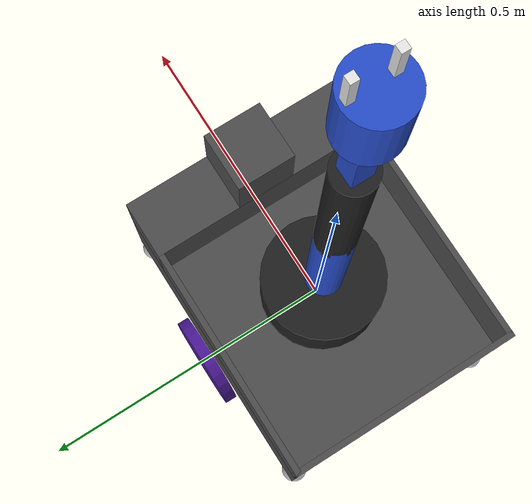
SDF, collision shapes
<sdf version="1.7">
 <model name="mixed_robot_2">
  <model name="delivery_robot">
   <link name="robot_footprint">
    <inertial>
     <pose>0.001787 -0 0.000661 0 -0 0</pose>
     <mass>15.14</mass>
     <inertia>
      <ixx>0.230096</ixx>
      <ixy>-3.87448e-22</ixy>
      <ixz>-0.00130133</ixz>
      <iyy>0.350509</iyy>
      <iyz>-1.43256e-22</iyz>
      <izz>0.522509</izz>
     </inertia>
    </inertial>
    <sensor name="camera1" type="depth">
     <always_on>1</always_on>
     <update_rate>20</update_rate>
     <visualize>1</visualize>
     <camera>
      <horizontal_fov>1.047</horizontal_fov>
      <image><width>640</width><height>480</height><format>R8G8B8</format></image>
      <depth_camera><output>depths</output></depth_camera>
      <clip><near>0.1</near><far>20</far></clip>
     </camera>
     <plugin name="camera_controller" filename="libgazebo_ros_openni_kinect.so">
      <alwaysOn>1</alwaysOn>
      <updateRate>10.0</updateRate>
      <cameraName>camera</cameraName>
      <frameName>camera_link_optical</frameName>
      <imageTopicName>rgb/image_raw</imageTopicName>
      <depthImageTopicName>depth/image_raw</depthImageTopicName>
      <pointCloudTopicName>depth/points</pointCloudTopicName>
      <cameraInfoTopicName>rgb/camera_info</cameraInfoTopicName>
      <depthImageCameraInfoTopicName>depth/camera_info</depthImageCameraInfoTopicName>
      <pointCloudCutoff>0.4</pointCloudCutoff>
      <hackBaseline>0.07</hackBaseline>
      <distortionK1>0.0</distortionK1>
      <distortionK2>0.0</distortionK2>
      <distortionK3>0.0</distortionK3>
      <distortionT1>0.0</distortionT1>
      <distortionT2>0.0</distortionT2>
      <CxPrime>0.0</CxPrime>
      <Cx>0.0</Cx>
      <Cy>0.0</Cy>
      <focalLength>0.0</focalLength>
      <robotNamespace>/</robotNamespace>
     </plugin>
     <pose>0.275 0 0.05 0 -0 0</pose>
    </sensor>
    <sensor name="head_hokuyo_sensor" type="ray">
     <visualize>0</visualize>
     <update_rate>40</update_rate>
     <ray>
      <scan>
       <horizontal>
        <samples>720</samples>
        <resolution>1</resolution>
        <min_angle>-1.5708</min_angle>
        <max_angle>1.5708</max_angle>
       </horizontal>
       <vertical><samples>1</samples><min_angle>0</min_angle><max_angle>0</max_angle></vertical>
      </scan>
      <range><min>0.1</min><max>30</max><resolution>0.01</resolution></range>
      <noise><type>gaussian</type><mean>0</mean><stddev>0.01</stddev></noise>
     </ray>
     <plugin name="gazebo_ros_head_hokuyo_controller" filename="libgazebo_ros_laser.so">
      <topicName>/scan</topicName>
      <frameName>hokuyo</frameName>
      <robotNamespace>/</robotNamespace>
     </plugin>
     <pose>0.2 0 0.225 0 -0 0</pose>
    </sensor>
    <visual name="robot_footprint_fixed_joint_lump__base_chassis_visual_visual">
     <geometry><box><size>0.5 0.4 0.15</size></box></geometry>
     <material>
      <script><name>Gazebo/DarkGrey</name><uri>file://media/materials/scripts/gazebo.material</uri></script>
      <shader type="pixel"/>
     </material>
    </visual>
    <visual name="robot_footprint_fixed_joint_lump__base_chassis_visual_visual_1">
     <pose>-0.245 0 0.125 0 -0 0</pose>
     <geometry><box><size>0.01 0.4 0.1</size></box></geometry>
     <material>
      <script><name>Gazebo/DarkGrey</name><uri>file://media/materials/scripts/gazebo.material</uri></script>
      <shader type="pixel"/>
     </material>
    </visual>
    <visual name="robot_footprint_fixed_joint_lump__camera_link_visual_visual_2">
     <pose>0.275 0 0.05 0 -0 0</pose>
     <geometry><box><size>0.05 0.05 0.05</size></box></geometry>
     <material>
      <script><name>Gazebo/Grey</name><uri>file://media/materials/scripts/gazebo.material</uri></script>
      <shader type="pixel"/>
     </material>
    </visual>
    <visual name="robot_footprint_fixed_joint_lump__base_chassis_visual_visual_3">
     <pose>0.2 0 0.125 0 -0 0</pose>
     <geometry><box><size>0.1 0.4 0.1</size></box></geometry>
     <material>
      <script><name>Gazebo/DarkGrey</name><uri>file://media/materials/scripts/gazebo.material</uri></script>
      <shader type="pixel"/>
     </material>
    </visual>
    <visual name="robot_footprint_fixed_joint_lump__hokuyo_visual_visual_4">
     <pose>0.2 0 0.225 0 -0 0</pose>
     <geometry>
      <mesh>
       <scale>1 1 1</scale>
       <uri>/home/lelyasa/catkin_ws/src/warehouse_robot_simulation/models/meshes/hokuyo.dae</uri>
      </mesh>
     </geometry>
     <material><shader type="pixel"/></material>
    </visual>
    <visual name="robot_footprint_fixed_joint_lump__base_chassis_visual_visual_5">
     <pose>0 0.195 0.125 0 -0 0</pose>
     <geometry><box><size>0.5 0.01 0.1</size></box></geometry>
     <material>
      <script><name>Gazebo/DarkGrey</name><uri>file://media/materials/scripts/gazebo.material</uri></script>
      <shader type="pixel"/>
     </material>
    </visual>
    <visual name="robot_footprint_fixed_joint_lump__base_chassis_visual_visual_6">
     <pose>0 -0.195 0.125 0 -0 0</pose>
     <geometry><box><size>0.5 0.01 0.1</size></box></geometry>
     <material>
      <script><name>Gazebo/DarkGrey</name><uri>file://media/materials/scripts/gazebo.material</uri></script>
      <shader type="pixel"/>
     </material>
    </visual>
    <collision name="robot_footprint_fixed_joint_lump__collision_collision">
     <geometry><box><size>0.5 0.4 0.15</size></box></geometry>
     <surface>
      <friction>
       <ode><mu>1</mu><mu2>1</mu2><fdir1>0 0 0</fdir1><slip1>0</slip1><slip2>0</slip2></ode>
       <torsional>
        <coefficient>1</coefficient>
        <patch_radius>0</patch_radius>
        <surface_radius>0</surface_radius>
        <use_patch_radius>1</use_patch_radius>
        <ode><slip>0</slip></ode>
       </torsional>
      </friction>
      <bounce><restitution_coefficient>0</restitution_coefficient><threshold>1e+06</threshold></bounce>
      <contact>
       <collide_without_contact>0</collide_without_contact>
       <collide_without_contact_bitmask>1</collide_without_contact_bitmask>
       <collide_bitmask>1</collide_bitmask>
       <ode>
        <soft_cfm>0</soft_cfm>
        <soft_erp>0.2</soft_erp>
        <kp>1e+13</kp>
        <kd>1</kd>
        <max_vel>0.01</max_vel>
        <min_depth>0</min_depth>
       </ode>
       <bullet>
        <split_impulse>1</split_impulse>
        <split_impulse_penetration_threshold>-0.01</split_impulse_penetration_threshold>
        <soft_cfm>0</soft_cfm>
        <soft_erp>0.2</soft_erp>
        <kp>1e+13</kp>
        <kd>1</kd>
       </bullet>
      </contact>
     </surface>
    </collision>
    <collision name="robot_footprint_fixed_joint_lump__camera_collision_collision_2">
     <pose>0.275 0 0.05 0 -0 0</pose>
     <geometry><box><size>0.05 0.05 0.05</size></box></geometry>
     <surface>
      <friction>
       <ode><mu>1</mu><mu2>1</mu2><fdir1>0 0 0</fdir1><slip1>0</slip1><slip2>0</slip2></ode>
       <torsional>
        <coefficient>1</coefficient>
        <patch_radius>0</patch_radius>
        <surface_radius>0</surface_radius>
        <use_patch_radius>1</use_patch_radius>
        <ode><slip>0</slip></ode>
       </torsional>
      </friction>
      <bounce><restitution_coefficient>0</restitution_coefficient><threshold>1e+06</threshold></bounce>
      <contact>
       <collide_without_contact>0</collide_without_contact>
       <collide_without_contact_bitmask>1</collide_without_contact_bitmask>
       <collide_bitmask>1</collide_bitmask>
       <ode>
        <soft_cfm>0</soft_cfm>
        <soft_erp>0.2</soft_erp>
        <kp>1e+13</kp>
        <kd>1</kd>
        <max_vel>0.01</max_vel>
        <min_depth>0</min_depth>
       </ode>
       <bullet>
        <split_impulse>1</split_impulse>
        <split_impulse_penetration_threshold>-0.01</split_impulse_penetration_threshold>
        <soft_cfm>0</soft_cfm>
        <soft_erp>0.2</soft_erp>
        <kp>1e+13</kp>
        <kd>1</kd>
       </bullet>
      </contact>
     </surface>
    </collision>
    <collision name="robot_footprint_fixed_joint_lump__collision_collision_1">
     <pose>-0.245 0 0.125 0 -0 0</pose>
     <geometry><box><size>0.01 0.4 0.1</size></box></geometry>
     <surface>
      <friction>
       <ode><mu>1</mu><mu2>1</mu2><fdir1>0 0 0</fdir1><slip1>0</slip1><slip2>0</slip2></ode>
       <torsional>
        <coefficient>1</coefficient>
        <patch_radius>0</patch_radius>
        <surface_radius>0</surface_radius>
        <use_patch_radius>1</use_patch_radius>
        <ode><slip>0</slip></ode>
       </torsional>
      </friction>
      <bounce><restitution_coefficient>0</restitution_coefficient><threshold>1e+06</threshold></bounce>
      <contact>
       <collide_without_contact>0</collide_without_contact>
       <collide_without_contact_bitmask>1</collide_without_contact_bitmask>
       <collide_bitmask>1</collide_bitmask>
       <ode>
        <soft_cfm>0</soft_cfm>
        <soft_erp>0.2</soft_erp>
        <kp>1e+13</kp>
        <kd>1</kd>
        <max_vel>0.01</max_vel>
        <min_depth>0</min_depth>
       </ode>
       <bullet>
        <split_impulse>1</split_impulse>
        <split_impulse_penetration_threshold>-0.01</split_impulse_penetration_threshold>
        <soft_cfm>0</soft_cfm>
        <soft_erp>0.2</soft_erp>
        <kp>1e+13</kp>
        <kd>1</kd>
       </bullet>
      </contact>
     </surface>
    </collision>
    <collision name="robot_footprint_fixed_joint_lump__collision_collision_3">
     <pose>0.2 0 0.125 0 -0 0</pose>
     <geometry><box><size>0.1 0.4 0.1</size></box></geometry>
     <surface>
      <friction>
       <ode><mu>1</mu><mu2>1</mu2><fdir1>0 0 0</fdir1><slip1>0</slip1><slip2>0</slip2></ode>
       <torsional>
        <coefficient>1</coefficient>
        <patch_radius>0</patch_radius>
        <surface_radius>0</surface_radius>
        <use_patch_radius>1</use_patch_radius>
        <ode><slip>0</slip></ode>
       </torsional>
      </friction>
      <bounce><restitution_coefficient>0</restitution_coefficient><threshold>1e+06</threshold></bounce>
      <contact>
       <collide_without_contact>0</collide_without_contact>
       <collide_without_contact_bitmask>1</collide_without_contact_bitmask>
       <collide_bitmask>1</collide_bitmask>
       <ode>
        <soft_cfm>0</soft_cfm>
        <soft_erp>0.2</soft_erp>
        <kp>1e+13</kp>
        <kd>1</kd>
        <max_vel>0.01</max_vel>
        <min_depth>0</min_depth>
       </ode>
       <bullet>
        <split_impulse>1</split_impulse>
        <split_impulse_penetration_threshold>-0.01</split_impulse_penetration_threshold>
        <soft_cfm>0</soft_cfm>
        <soft_erp>0.2</soft_erp>
        <kp>1e+13</kp>
        <kd>1</kd>
       </bullet>
      </contact>
     </surface>
    </collision>
    <collision name="robot_footprint_fixed_joint_lump__hokuyo_collision_collision_4">
     <pose>0.2 0 0.225 0 -0 0</pose>
     <geometry><box><size>0.1 0.1 0.1</size></box></geometry>
     <surface>
      <friction>
       <ode><mu>1</mu><mu2>1</mu2><fdir1>0 0 0</fdir1><slip1>0</slip1><slip2>0</slip2></ode>
       <torsional>
        <coefficient>1</coefficient>
        <patch_radius>0</patch_radius>
        <surface_radius>0</surface_radius>
        <use_patch_radius>1</use_patch_radius>
        <ode><slip>0</slip></ode>
       </torsional>
      </friction>
      <bounce><restitution_coefficient>0</restitution_coefficient><threshold>1e+06</threshold></bounce>
      <contact>
       <collide_without_contact>0</collide_without_contact>
       <collide_without_contact_bitmask>1</collide_without_contact_bitmask>
       <collide_bitmask>1</collide_bitmask>
       <ode>
        <soft_cfm>0</soft_cfm>
        <soft_erp>0.2</soft_erp>
        <kp>1e+13</kp>
        <kd>1</kd>
        <max_vel>0.01</max_vel>
        <min_depth>0</min_depth>
       </ode>
       <bullet>
        <split_impulse>1</split_impulse>
        <split_impulse_penetration_threshold>-0.01</split_impulse_penetration_threshold>
        <soft_cfm>0</soft_cfm>
        <soft_erp>0.2</soft_erp>
        <kp>1e+13</kp>
        <kd>1</kd>
       </bullet>
      </contact>
     </surface>
    </collision>
    <collision name="robot_footprint_fixed_joint_lump__collision_collision_5">
     <pose>0 0.195 0.125 0 -0 0</pose>
     <geometry><box><size>0.5 0.01 0.1</size></box></geometry>
     <surface>
      <friction>
       <ode><mu>1</mu><mu2>1</mu2><fdir1>0 0 0</fdir1><slip1>0</slip1><slip2>0</slip2></ode>
       <torsional>
        <coefficient>1</coefficient>
        <patch_radius>0</patch_radius>
        <surface_radius>0</surface_radius>
        <use_patch_radius>1</use_patch_radius>
        <ode><slip>0</slip></ode>
       </torsional>
      </friction>
      <bounce><restitution_coefficient>0</restitution_coefficient><threshold>1e+06</threshold></bounce>
      <contact>
       <collide_without_contact>0</collide_without_contact>
       <collide_without_contact_bitmask>1</collide_without_contact_bitmask>
       <collide_bitmask>1</collide_bitmask>
       <ode>
        <soft_cfm>0</soft_cfm>
        <soft_erp>0.2</soft_erp>
        <kp>1e+13</kp>
        <kd>1</kd>
        <max_vel>0.01</max_vel>
        <min_depth>0</min_depth>
       </ode>
       <bullet>
        <split_impulse>1</split_impulse>
        <split_impulse_penetration_threshold>-0.01</split_impulse_penetration_threshold>
        <soft_cfm>0</soft_cfm>
        <soft_erp>0.2</soft_erp>
        <kp>1e+13</kp>
        <kd>1</kd>
       </bullet>
      </contact>
     </surface>
    </collision>
    <collision name="robot_footprint_fixed_joint_lump__collision_collision_6">
     <pose>0 -0.195 0.125 0 -0 0</pose>
     <geometry><box><size>0.5 0.01 0.1</size></box></geometry>
     <surface>
      <friction>
       <ode><mu>1</mu><mu2>1</mu2><fdir1>0 0 0</fdir1><slip1>0</slip1><slip2>0</slip2></ode>
       <torsional>
        <coefficient>1</coefficient>
        <patch_radius>0</patch_radius>
        <surface_radius>0</surface_radius>
        <use_patch_radius>1</use_patch_radius>
        <ode><slip>0</slip></ode>
       </torsional>
      </friction>
      <bounce><restitution_coefficient>0</restitution_coefficient><threshold>1e+06</threshold></bounce>
      <contact>
       <collide_without_contact>0</collide_without_contact>
       <collide_without_contact_bitmask>1</collide_without_contact_bitmask>
       <collide_bitmask>1</collide_bitmask>
       <ode>
        <soft_cfm>0</soft_cfm>
        <soft_erp>0.2</soft_erp>
        <kp>1e+13</kp>
        <kd>1</kd>
        <max_vel>0.01</max_vel>
        <min_depth>0</min_depth>
       </ode>
       <bullet>
        <split_impulse>1</split_impulse>
        <split_impulse_penetration_threshold>-0.01</split_impulse_penetration_threshold>
        <soft_cfm>0</soft_cfm>
        <soft_erp>0.2</soft_erp>
        <kp>1e+13</kp>
        <kd>1</kd>
       </bullet>
      </contact>
     </surface>
    </collision>
   </link>
   <link name="back_left_caster">
    <pose>-0.234375 0.184375 -0.09625 0 -0 0</pose>
    <inertial>
     <mass>0.1</mass>
     <inertia>
      <ixx>1.80625e-05</ixx>
      <ixy>0</ixy>
      <ixz>0</ixz>
      <iyy>1.80625e-05</iyy>
      <iyz>0</iyz>
      <izz>1.80625e-05</izz>
     </inertia>
    </inertial>
    <visual name="back_left_caster_visual_visual">
     <geometry><sphere><radius>0.02125</radius></sphere></geometry>
     <material>
      <script><name>Gazebo/White</name><uri>file://media/materials/scripts/gazebo.material</uri></script>
      <shader type="pixel"/>
     </material>
    </visual>
    <collision name="back_left_caster_fixed_joint_lump__collision_collision">
     <geometry><sphere><radius>0.02125</radius></sphere></geometry>
     <surface>
      <friction>
       <ode><mu>1</mu><mu2>1</mu2><fdir1>0 0 0</fdir1><slip1>0</slip1><slip2>0</slip2></ode>
       <torsional>
        <coefficient>1</coefficient>
        <patch_radius>0</patch_radius>
        <surface_radius>0</surface_radius>
        <use_patch_radius>1</use_patch_radius>
        <ode><slip>0</slip></ode>
       </torsional>
      </friction>
      <bounce><restitution_coefficient>0</restitution_coefficient><threshold>1e+06</threshold></bounce>
      <contact>
       <collide_without_contact>0</collide_without_contact>
       <collide_without_contact_bitmask>1</collide_without_contact_bitmask>
       <collide_bitmask>1</collide_bitmask>
       <ode>
        <soft_cfm>0</soft_cfm>
        <soft_erp>0.2</soft_erp>
        <kp>1e+13</kp>
        <kd>1</kd>
        <max_vel>0.01</max_vel>
        <min_depth>0</min_depth>
       </ode>
       <bullet>
        <split_impulse>1</split_impulse>
        <split_impulse_penetration_threshold>-0.01</split_impulse_penetration_threshold>
        <soft_cfm>0</soft_cfm>
        <soft_erp>0.2</soft_erp>
        <kp>1e+13</kp>
        <kd>1</kd>
       </bullet>
      </contact>
     </surface>
    </collision>
   </link>
   <link name="back_right_caster">
    <pose>-0.234375 -0.184375 -0.09625 0 -0 0</pose>
    <inertial>
     <mass>0.1</mass>
     <inertia>
      <ixx>1.80625e-05</ixx>
      <ixy>0</ixy>
      <ixz>0</ixz>
      <iyy>1.80625e-05</iyy>
      <iyz>0</iyz>
      <izz>1.80625e-05</izz>
     </inertia>
    </inertial>
    <visual name="back_right_caster_visual_visual">
     <geometry><sphere><radius>0.02125</radius></sphere></geometry>
     <material>
      <script><name>Gazebo/White</name><uri>file://media/materials/scripts/gazebo.material</uri></script>
      <shader type="pixel"/>
     </material>
    </visual>
    <collision name="back_right_caster_fixed_joint_lump__collision_collision">
     <geometry><sphere><radius>0.02125</radius></sphere></geometry>
     <surface>
      <friction>
       <ode><mu>1</mu><mu2>1</mu2><fdir1>0 0 0</fdir1><slip1>0</slip1><slip2>0</slip2></ode>
       <torsional>
        <coefficient>1</coefficient>
        <patch_radius>0</patch_radius>
        <surface_radius>0</surface_radius>
        <use_patch_radius>1</use_patch_radius>
        <ode><slip>0</slip></ode>
       </torsional>
      </friction>
      <bounce><restitution_coefficient>0</restitution_coefficient><threshold>1e+06</threshold></bounce>
      <contact>
       <collide_without_contact>0</collide_without_contact>
       <collide_without_contact_bitmask>1</collide_without_contact_bitmask>
       <collide_bitmask>1</collide_bitmask>
       <ode>
        <soft_cfm>0</soft_cfm>
        <soft_erp>0.2</soft_erp>
        <kp>1e+13</kp>
        <kd>1</kd>
        <max_vel>0.01</max_vel>
        <min_depth>0</min_depth>
       </ode>
       <bullet>
        <split_impulse>1</split_impulse>
        <split_impulse_penetration_threshold>-0.01</split_impulse_penetration_threshold>
        <soft_cfm>0</soft_cfm>
        <soft_erp>0.2</soft_erp>
        <kp>1e+13</kp>
        <kd>1</kd>
       </bullet>
      </contact>
     </surface>
    </collision>
   </link>
   <link name="front_left_caster">
    <pose>0.234375 0.184375 -0.09625 0 -0 0</pose>
    <inertial>
     <mass>0.1</mass>
     <inertia>
      <ixx>1.80625e-05</ixx>
      <ixy>0</ixy>
      <ixz>0</ixz>
      <iyy>1.80625e-05</iyy>
      <iyz>0</iyz>
      <izz>1.80625e-05</izz>
     </inertia>
    </inertial>
    <visual name="front_left_caster_visual_visual">
     <geometry><sphere><radius>0.02125</radius></sphere></geometry>
     <material>
      <script><name>Gazebo/White</name><uri>file://media/materials/scripts/gazebo.material</uri></script>
      <shader type="pixel"/>
     </material>
    </visual>
    <collision name="front_left_caster_fixed_joint_lump__collision_collision">
     <geometry><sphere><radius>0.02125</radius></sphere></geometry>
     <surface>
      <friction>
       <ode><mu>1</mu><mu2>1</mu2><fdir1>0 0 0</fdir1><slip1>0</slip1><slip2>0</slip2></ode>
       <torsional>
        <coefficient>1</coefficient>
        <patch_radius>0</patch_radius>
        <surface_radius>0</surface_radius>
        <use_patch_radius>1</use_patch_radius>
        <ode><slip>0</slip></ode>
       </torsional>
      </friction>
      <bounce><restitution_coefficient>0</restitution_coefficient><threshold>1e+06</threshold></bounce>
      <contact>
       <collide_without_contact>0</collide_without_contact>
       <collide_without_contact_bitmask>1</collide_without_contact_bitmask>
       <collide_bitmask>1</collide_bitmask>
       <ode>
        <soft_cfm>0</soft_cfm>
        <soft_erp>0.2</soft_erp>
        <kp>1e+13</kp>
        <kd>1</kd>
        <max_vel>0.01</max_vel>
        <min_depth>0</min_depth>
       </ode>
       <bullet>
        <split_impulse>1</split_impulse>
        <split_impulse_penetration_threshold>-0.01</split_impulse_penetration_threshold>
        <soft_cfm>0</soft_cfm>
        <soft_erp>0.2</soft_erp>
        <kp>1e+13</kp>
        <kd>1</kd>
       </bullet>
      </contact>
     </surface>
    </collision>
   </link>
   <link name="front_right_caster">
    <pose>0.234375 -0.184375 -0.09625 0 -0 0</pose>
    <inertial>
     <mass>0.1</mass>
     <inertia>
      <ixx>1.80625e-05</ixx>
      <ixy>0</ixy>
      <ixz>0</ixz>
      <iyy>1.80625e-05</iyy>
      <iyz>0</iyz>
      <izz>1.80625e-05</izz>
     </inertia>
    </inertial>
    <visual name="front_right_caster_visual_visual">
     <geometry><sphere><radius>0.02125</radius></sphere></geometry>
     <material>
      <script><name>Gazebo/White</name><uri>file://media/materials/scripts/gazebo.material</uri></script>
      <shader type="pixel"/>
     </material>
    </visual>
    <collision name="front_right_caster_fixed_joint_lump__collision_collision">
     <geometry><sphere><radius>0.02125</radius></sphere></geometry>
     <surface>
      <friction>
       <ode><mu>1</mu><mu2>1</mu2><fdir1>0 0 0</fdir1><slip1>0</slip1><slip2>0</slip2></ode>
       <torsional>
        <coefficient>1</coefficient>
        <patch_radius>0</patch_radius>
        <surface_radius>0</surface_radius>
        <use_patch_radius>1</use_patch_radius>
        <ode><slip>0</slip></ode>
       </torsional>
      </friction>
      <bounce><restitution_coefficient>0</restitution_coefficient><threshold>1e+06</threshold></bounce>
      <contact>
       <collide_without_contact>0</collide_without_contact>
       <collide_without_contact_bitmask>1</collide_without_contact_bitmask>
       <collide_bitmask>1</collide_bitmask>
       <ode>
        <soft_cfm>0</soft_cfm>
        <soft_erp>0.2</soft_erp>
        <kp>1e+13</kp>
        <kd>1</kd>
        <max_vel>0.01</max_vel>
        <min_depth>0</min_depth>
       </ode>
       <bullet>
        <split_impulse>1</split_impulse>
        <split_impulse_penetration_threshold>-0.01</split_impulse_penetration_threshold>
        <soft_cfm>0</soft_cfm>
        <soft_erp>0.2</soft_erp>
        <kp>1e+13</kp>
        <kd>1</kd>
       </bullet>
      </contact>
     </surface>
    </collision>
   </link>
   <link name="left_wheel">
    <pose>-0 0.215 -0.0375 0 -0 0</pose>
    <inertial>
     <pose>0 0 0 -0 1.5707 1.5707</pose>
     <mass>1</mass>
     <inertia>
      <ixx>0.00163333</ixx>
      <ixy>0</ixy>
      <ixz>0</ixz>
      <iyy>0.00163333</iyy>
      <iyz>0</iyz>
      <izz>0.0032</izz>
     </inertia>
    </inertial>
    <visual name="left_wheel_visual_visual">
     <pose>0 0 0 1.56615 1.57079 3.13685</pose>
     <geometry><cylinder><length>0.02</length><radius>0.08</radius></cylinder></geometry>
     <material>
      <script><name>Gazebo/Indigo</name><uri>file://media/materials/scripts/gazebo.material</uri></script>
      <shader type="pixel"/>
     </material>
    </visual>
    <collision name="left_wheel_fixed_joint_lump__collision_collision">
     <pose>0 0 0 1.57089 1.57079 -3.14159</pose>
     <geometry><cylinder><radius>0.08</radius><length>0.02</length></cylinder></geometry>
     <surface>
      <friction>
       <ode><mu>1</mu><mu2>1</mu2><fdir1>0 0 0</fdir1><slip1>0</slip1><slip2>0</slip2></ode>
       <torsional>
        <coefficient>1</coefficient>
        <patch_radius>0</patch_radius>
        <surface_radius>0</surface_radius>
        <use_patch_radius>1</use_patch_radius>
        <ode><slip>0</slip></ode>
       </torsional>
      </friction>
      <bounce><restitution_coefficient>0</restitution_coefficient><threshold>1e+06</threshold></bounce>
      <contact>
       <collide_without_contact>0</collide_without_contact>
       <collide_without_contact_bitmask>1</collide_without_contact_bitmask>
       <collide_bitmask>1</collide_bitmask>
       <ode>
        <soft_cfm>0</soft_cfm>
        <soft_erp>0.2</soft_erp>
        <kp>1e+13</kp>
        <kd>1</kd>
        <max_vel>0.01</max_vel>
        <min_depth>0</min_depth>
       </ode>
       <bullet>
        <split_impulse>1</split_impulse>
        <split_impulse_penetration_threshold>-0.01</split_impulse_penetration_threshold>
        <soft_cfm>0</soft_cfm>
        <soft_erp>0.2</soft_erp>
        <kp>1e+13</kp>
        <kd>1</kd>
       </bullet>
      </contact>
     </surface>
    </collision>
   </link>
   <link name="right_wheel">
    <pose>-0 -0.215 -0.0375 0 -0 0</pose>
    <inertial>
     <pose>0 0 0 -0 1.5707 1.5707</pose>
     <mass>1</mass>
     <inertia>
      <ixx>0.00163333</ixx>
      <ixy>0</ixy>
      <ixz>0</ixz>
      <iyy>0.00163333</iyy>
      <iyz>0</iyz>
      <izz>0.0032</izz>
     </inertia>
    </inertial>
    <visual name="right_wheel_visual_visual">
     <pose>0 0 0 1.56615 1.57079 3.13685</pose>
     <geometry><cylinder><length>0.02</length><radius>0.08</radius></cylinder></geometry>
     <material>
      <script><name>Gazebo/Indigo</name><uri>file://media/materials/scripts/gazebo.material</uri></script>
      <shader type="pixel"/>
     </material>
    </visual>
    <collision name="right_wheel_fixed_joint_lump__collision_collision">
     <pose>0 0 0 1.57089 1.57079 -3.14159</pose>
     <geometry><cylinder><radius>0.08</radius><length>0.02</length></cylinder></geometry>
     <surface>
      <friction>
       <ode><mu>1</mu><mu2>1</mu2><fdir1>0 0 0</fdir1><slip1>0</slip1><slip2>0</slip2></ode>
       <torsional>
        <coefficient>1</coefficient>
        <patch_radius>0</patch_radius>
        <surface_radius>0</surface_radius>
        <use_patch_radius>1</use_patch_radius>
        <ode><slip>0</slip></ode>
       </torsional>
      </friction>
      <bounce><restitution_coefficient>0</restitution_coefficient><threshold>1e+06</threshold></bounce>
      <contact>
       <collide_without_contact>0</collide_without_contact>
       <collide_without_contact_bitmask>1</collide_without_contact_bitmask>
       <collide_bitmask>1</collide_bitmask>
       <ode>
        <soft_cfm>0</soft_cfm>
        <soft_erp>0.2</soft_erp>
        <kp>1e+13</kp>
        <kd>1</kd>
        <max_vel>0.01</max_vel>
        <min_depth>0</min_depth>
       </ode>
       <bullet>
        <split_impulse>1</split_impulse>
        <split_impulse_penetration_threshold>-0.01</split_impulse_penetration_threshold>
        <soft_cfm>0</soft_cfm>
        <soft_erp>0.2</soft_erp>
        <kp>1e+13</kp>
        <kd>1</kd>
       </bullet>
      </contact>
     </surface>
    </collision>
   </link>
   <joint name="back_left_caster_hinge" type="revolute">
    <parent>robot_footprint</parent>
    <child>back_left_caster</child>
    <axis>
     <xyz>1 1 1</xyz>
     <limit><lower>-1e+16</lower><upper>1e+16</upper><effort>-1</effort><velocity>-1</velocity></limit>
     <dynamics>
      <spring_reference>0</spring_reference>
      <spring_stiffness>0</spring_stiffness>
      <damping>0</damping>
      <friction>0</friction>
     </dynamics>
    </axis>
    <physics>
     <ode><limit><cfm>0</cfm><erp>0.2</erp></limit><suspension><cfm>0</cfm><erp>0.2</erp></suspension></ode>
    </physics>
   </joint>
   <joint name="back_right_caster_hinge" type="revolute">
    <parent>robot_footprint</parent>
    <child>back_right_caster</child>
    <axis>
     <xyz>1 1 1</xyz>
     <limit><lower>-1e+16</lower><upper>1e+16</upper><effort>-1</effort><velocity>-1</velocity></limit>
     <dynamics>
      <spring_reference>0</spring_reference>
      <spring_stiffness>0</spring_stiffness>
      <damping>0</damping>
      <friction>0</friction>
     </dynamics>
    </axis>
    <physics>
     <ode><limit><cfm>0</cfm><erp>0.2</erp></limit><suspension><cfm>0</cfm><erp>0.2</erp></suspension></ode>
    </physics>
   </joint>
   <joint name="front_left_caster_hinge" type="revolute">
    <parent>robot_footprint</parent>
    <child>front_left_caster</child>
    <axis>
     <xyz>1 1 1</xyz>
     <limit><lower>-1e+16</lower><upper>1e+16</upper><effort>-1</effort><velocity>-1</velocity></limit>
     <dynamics>
      <spring_reference>0</spring_reference>
      <spring_stiffness>0</spring_stiffness>
      <damping>0</damping>
      <friction>0</friction>
     </dynamics>
    </axis>
    <physics>
     <ode><limit><cfm>0</cfm><erp>0.2</erp></limit><suspension><cfm>0</cfm><erp>0.2</erp></suspension></ode>
    </physics>
   </joint>
   <joint name="front_right_caster_hinge" type="revolute">
    <parent>robot_footprint</parent>
    <child>front_right_caster</child>
    <axis>
     <xyz>1 1 1</xyz>
     <limit><lower>-1e+16</lower><upper>1e+16</upper><effort>-1</effort><velocity>-1</velocity></limit>
     <dynamics>
      <spring_reference>0</spring_reference>
      <spring_stiffness>0</spring_stiffness>
      <damping>0</damping>
      <friction>0</friction>
     </dynamics>
    </axis>
    <physics>
     <ode><limit><cfm>0</cfm><erp>0.2</erp></limit><suspension><cfm>0</cfm><erp>0.2</erp></suspension></ode>
    </physics>
   </joint>
   <joint name="left_wheel_hinge" type="revolute">
    <parent>robot_footprint</parent>
    <child>left_wheel</child>
    <axis>
     <xyz>0 1 0</xyz>
     <limit><lower>-1e+16</lower><upper>1e+16</upper><effort>-1</effort><velocity>-1</velocity></limit>
     <dynamics>
      <spring_reference>0</spring_reference>
      <spring_stiffness>0</spring_stiffness>
      <damping>0</damping>
      <friction>1</friction>
     </dynamics>
    </axis>
    <physics>
     <ode><limit><cfm>0</cfm><erp>0.2</erp></limit><suspension><cfm>0</cfm><erp>0.2</erp></suspension></ode>
    </physics>
   </joint>
   <joint name="right_wheel_hinge" type="revolute">
    <parent>robot_footprint</parent>
    <child>right_wheel</child>
    <axis>
     <xyz>0 1 0</xyz>
     <limit><lower>-1e+16</lower><upper>1e+16</upper><effort>-1</effort><velocity>-1</velocity></limit>
     <dynamics>
      <spring_reference>0</spring_reference>
      <spring_stiffness>0</spring_stiffness>
      <damping>0</damping>
      <friction>1</friction>
     </dynamics>
    </axis>
    <physics>
     <ode><limit><cfm>0</cfm><erp>0.2</erp></limit><suspension><cfm>0</cfm><erp>0.2</erp></suspension></ode>
    </physics>
   </joint>
   <static>0</static>
   <plugin name="differential_drive_controller" filename="libgazebo_ros_diff_drive.so">
    <legacyMode>0</legacyMode>
    <alwaysOn>1</alwaysOn>
    <updateRate>10</updateRate>
    <leftJoint>left_wheel_hinge</leftJoint>
    <rightJoint>right_wheel_hinge</rightJoint>
    <wheelSeparation>0.43</wheelSeparation>
    <wheelDiameter>0.16</wheelDiameter>
    <torque>20</torque>
    <commandTopic>cmd_vel</commandTopic>
    <odometryTopic>odom</odometryTopic>
    <odometryFrame>odom</odometryFrame>
    <robotBaseFrame>robot_footprint</robotBaseFrame>
    <publishWheelTF>0</publishWheelTF>
    <publishWheelJointState>0</publishWheelJointState>
    <rosDebugLevel>na</rosDebugLevel>
    <wheelAcceleration>1.0</wheelAcceleration>
    <wheelTorque>20</wheelTorque>
    <odometrySource>world</odometrySource>
    <publishTf>1</publishTf>
    <publishOdomTF>1</publishOdomTF>
    <robotNamespace>/</robotNamespace>
   </plugin>
   <pose>0.007071 0.000689 -0.031216 0 0 0</pose>
  </model>
  <model name="hand_robot">
   <link name="base_link">
    <inertial>
     <mass>0.1</mass>
     <inertia><ixx>0.03</ixx><ixy>0</ixy><ixz>0</ixz><iyy>0.03</iyy><iyz>0</iyz><izz>0.03</izz></inertia>
    </inertial>
   </link>
   <link name="finger1">
    <pose>0 -0.025 0.91 0 -0 0</pose>
    <inertial>
     <mass>0.1</mass>
     <inertia><ixx>0.03</ixx><ixy>0</ixy><ixz>0</ixz><iyy>0.03</iyy><iyz>0</iyz><izz>0.03</izz></inertia>
    </inertial>
    <visual name="finger1_visual">
     <pose>0.005 0.005 0.025 0 -0 0</pose>
     <geometry><box><size>0.01 0.01 0.05</size></box></geometry>
     <material>
      <script><name>Gazebo/White</name><uri>file://media/materials/scripts/gazebo.material</uri></script>
      <shader type="pixel"/>
     </material>
    </visual>
    <collision name="finger1_collision">
     <pose>0.005 0.005 0.025 0 -0 0</pose>
     <geometry><box><size>0.01 0.01 0.05</size></box></geometry>
     <surface>
      <friction>
       <ode><mu>1</mu><mu2>1</mu2><fdir1>0 0 0</fdir1><slip1>0</slip1><slip2>0</slip2></ode>
       <torsional>
        <coefficient>1</coefficient>
        <patch_radius>0</patch_radius>
        <surface_radius>0</surface_radius>
        <use_patch_radius>1</use_patch_radius>
        <ode><slip>0</slip></ode>
       </torsional>
      </friction>
      <bounce><restitution_coefficient>0</restitution_coefficient><threshold>1e+06</threshold></bounce>
      <contact>
       <collide_without_contact>0</collide_without_contact>
       <collide_without_contact_bitmask>1</collide_without_contact_bitmask>
       <collide_bitmask>1</collide_bitmask>
       <ode>
        <soft_cfm>0</soft_cfm>
        <soft_erp>0.2</soft_erp>
        <kp>1e+13</kp>
        <kd>1</kd>
        <max_vel>0.01</max_vel>
        <min_depth>0</min_depth>
       </ode>
       <bullet>
        <split_impulse>1</split_impulse>
        <split_impulse_penetration_threshold>-0.01</split_impulse_penetration_threshold>
        <soft_cfm>0</soft_cfm>
        <soft_erp>0.2</soft_erp>
        <kp>1e+13</kp>
        <kd>1</kd>
       </bullet>
      </contact>
     </surface>
    </collision>
   </link>
   <link name="finger2">
    <pose>-0 0.025 0.91 0 -0 0</pose>
    <inertial>
     <mass>0.1</mass>
     <inertia><ixx>0.03</ixx><ixy>0</ixy><ixz>0</ixz><iyy>0.03</iyy><iyz>0</iyz><izz>0.03</izz></inertia>
    </inertial>
    <visual name="finger2_visual">
     <pose>0.005 0.005 0.025 0 -0 0</pose>
     <geometry><box><size>0.01 0.01 0.05</size></box></geometry>
     <material>
      <script><name>Gazebo/White</name><uri>file://media/materials/scripts/gazebo.material</uri></script>
      <shader type="pixel"/>
     </material>
    </visual>
    <collision name="finger2_collision">
     <pose>0.005 0.005 0.025 0 -0 0</pose>
     <geometry><box><size>0.01 0.01 0.05</size></box></geometry>
     <surface>
      <friction>
       <ode><mu>1</mu><mu2>1</mu2><fdir1>0 0 0</fdir1><slip1>0</slip1><slip2>0</slip2></ode>
       <torsional>
        <coefficient>1</coefficient>
        <patch_radius>0</patch_radius>
        <surface_radius>0</surface_radius>
        <use_patch_radius>1</use_patch_radius>
        <ode><slip>0</slip></ode>
       </torsional>
      </friction>
      <bounce><restitution_coefficient>0</restitution_coefficient><threshold>1e+06</threshold></bounce>
      <contact>
       <collide_without_contact>0</collide_without_contact>
       <collide_without_contact_bitmask>1</collide_without_contact_bitmask>
       <collide_bitmask>1</collide_bitmask>
       <ode>
        <soft_cfm>0</soft_cfm>
        <soft_erp>0.2</soft_erp>
        <kp>1e+13</kp>
        <kd>1</kd>
        <max_vel>0.01</max_vel>
        <min_depth>0</min_depth>
       </ode>
       <bullet>
        <split_impulse>1</split_impulse>
        <split_impulse_penetration_threshold>-0.01</split_impulse_penetration_threshold>
        <soft_cfm>0</soft_cfm>
        <soft_erp>0.2</soft_erp>
        <kp>1e+13</kp>
        <kd>1</kd>
       </bullet>
      </contact>
     </surface>
    </collision>
   </link>
   <link name="link1">
    <pose>-0 -0 0.01 0 -0 0</pose>
    <inertial>
     <mass>0.1</mass>
     <inertia><ixx>0.03</ixx><ixy>0</ixy><ixz>0</ixz><iyy>0.03</iyy><iyz>0</iyz><izz>0.03</izz></inertia>
    </inertial>
    <visual name="link1_visual">
     <pose>0 0 0.05 0 -0 0</pose>
     <geometry><cylinder><length>0.1</length><radius>0.1</radius></cylinder></geometry>
     <material>
      <script><name>Gazebo/Black</name><uri>file://media/materials/scripts/gazebo.material</uri></script>
      <shader type="pixel"/>
     </material>
    </visual>
    <collision name="link1_collision">
     <pose>0 0 0.05 0 -0 0</pose>
     <geometry><cylinder><radius>0.1</radius><length>0.1</length></cylinder></geometry>
     <surface>
      <friction>
       <ode><mu>1</mu><mu2>1</mu2><fdir1>0 0 0</fdir1><slip1>0</slip1><slip2>0</slip2></ode>
       <torsional>
        <coefficient>1</coefficient>
        <patch_radius>0</patch_radius>
        <surface_radius>0</surface_radius>
        <use_patch_radius>1</use_patch_radius>
        <ode><slip>0</slip></ode>
       </torsional>
      </friction>
      <bounce><restitution_coefficient>0</restitution_coefficient><threshold>1e+06</threshold></bounce>
      <contact>
       <collide_without_contact>0</collide_without_contact>
       <collide_without_contact_bitmask>1</collide_without_contact_bitmask>
       <collide_bitmask>1</collide_bitmask>
       <ode>
        <soft_cfm>0</soft_cfm>
        <soft_erp>0.2</soft_erp>
        <kp>1e+13</kp>
        <kd>1</kd>
        <max_vel>0.01</max_vel>
        <min_depth>0</min_depth>
       </ode>
       <bullet>
        <split_impulse>1</split_impulse>
        <split_impulse_penetration_threshold>-0.01</split_impulse_penetration_threshold>
        <soft_cfm>0</soft_cfm>
        <soft_erp>0.2</soft_erp>
        <kp>1e+13</kp>
        <kd>1</kd>
       </bullet>
      </contact>
     </surface>
    </collision>
   </link>
   <link name="link2">
    <pose>-0 0 0.09 0 -0 0</pose>
    <inertial>
     <mass>0.1</mass>
     <inertia><ixx>0.03</ixx><ixy>0</ixy><ixz>0</ixz><iyy>0.03</iyy><iyz>0</iyz><izz>0.03</izz></inertia>
    </inertial>
    <visual name="link2_visual">
     <pose>0 0 0.15 0 -0 0</pose>
     <geometry><cylinder><length>0.3</length><radius>0.03</radius></cylinder></geometry>
     <material>
      <script><name>Gazebo/Blue</name><uri>file://media/materials/scripts/gazebo.material</uri></script>
      <shader type="pixel"/>
     </material>
    </visual>
    <collision name="link2_collision">
     <pose>0 0 0.15 0 -0 0</pose>
     <geometry><cylinder><radius>0.03</radius><length>0.3</length></cylinder></geometry>
     <surface>
      <friction>
       <ode><mu>1</mu><mu2>1</mu2><fdir1>0 0 0</fdir1><slip1>0</slip1><slip2>0</slip2></ode>
       <torsional>
        <coefficient>1</coefficient>
        <patch_radius>0</patch_radius>
        <surface_radius>0</surface_radius>
        <use_patch_radius>1</use_patch_radius>
        <ode><slip>0</slip></ode>
       </torsional>
      </friction>
      <bounce><restitution_coefficient>0</restitution_coefficient><threshold>1e+06</threshold></bounce>
      <contact>
       <collide_without_contact>0</collide_without_contact>
       <collide_without_contact_bitmask>1</collide_without_contact_bitmask>
       <collide_bitmask>1</collide_bitmask>
       <ode>
        <soft_cfm>0</soft_cfm>
        <soft_erp>0.2</soft_erp>
        <kp>1e+13</kp>
        <kd>1</kd>
        <max_vel>0.01</max_vel>
        <min_depth>0</min_depth>
       </ode>
       <bullet>
        <split_impulse>1</split_impulse>
        <split_impulse_penetration_threshold>-0.01</split_impulse_penetration_threshold>
        <soft_cfm>0</soft_cfm>
        <soft_erp>0.2</soft_erp>
        <kp>1e+13</kp>
        <kd>1</kd>
       </bullet>
      </contact>
     </surface>
    </collision>
   </link>
   <link name="link3">
    <pose>-0 0 0.37 0 -0 0</pose>
    <inertial>
     <mass>0.1</mass>
     <inertia><ixx>0.03</ixx><ixy>0</ixy><ixz>0</ixz><iyy>0.03</iyy><iyz>0</iyz><izz>0.03</izz></inertia>
    </inertial>
    <visual name="link3_visual">
     <pose>0 0 0.15 0 -0 0</pose>
     <geometry><cylinder><length>0.3</length><radius>0.03</radius></cylinder></geometry>
     <material>
      <script><name>Gazebo/Black</name><uri>file://media/materials/scripts/gazebo.material</uri></script>
      <shader type="pixel"/>
     </material>
    </visual>
    <collision name="link3_collision">
     <pose>0 0 0.15 0 -0 0</pose>
     <geometry><cylinder><radius>0.03</radius><length>0.3</length></cylinder></geometry>
     <surface>
      <friction>
       <ode><mu>1</mu><mu2>1</mu2><fdir1>0 0 0</fdir1><slip1>0</slip1><slip2>0</slip2></ode>
       <torsional>
        <coefficient>1</coefficient>
        <patch_radius>0</patch_radius>
        <surface_radius>0</surface_radius>
        <use_patch_radius>1</use_patch_radius>
        <ode><slip>0</slip></ode>
       </torsional>
      </friction>
      <bounce><restitution_coefficient>0</restitution_coefficient><threshold>1e+06</threshold></bounce>
      <contact>
       <collide_without_contact>0</collide_without_contact>
       <collide_without_contact_bitmask>1</collide_without_contact_bitmask>
       <collide_bitmask>1</collide_bitmask>
       <ode>
        <soft_cfm>0</soft_cfm>
        <soft_erp>0.2</soft_erp>
        <kp>1e+13</kp>
        <kd>1</kd>
        <max_vel>0.01</max_vel>
        <min_depth>0</min_depth>
       </ode>
       <bullet>
        <split_impulse>1</split_impulse>
        <split_impulse_penetration_threshold>-0.01</split_impulse_penetration_threshold>
        <soft_cfm>0</soft_cfm>
        <soft_erp>0.2</soft_erp>
        <kp>1e+13</kp>
        <kd>1</kd>
       </bullet>
      </contact>
     </surface>
    </collision>
   </link>
   <link name="link4">
    <pose>-0 -0 0.65 0 -0 0</pose>
    <inertial>
     <mass>0.1</mass>
     <inertia><ixx>0.03</ixx><ixy>0</ixy><ixz>0</ixz><iyy>0.03</iyy><iyz>0</iyz><izz>0.03</izz></inertia>
    </inertial>
    <visual name="link4_visual">
     <pose>0 0 0.05 0 -0 0</pose>
     <geometry><box><size>0.03 0.03 0.1</size></box></geometry>
     <material>
      <script><name>Gazebo/Blue</name><uri>file://media/materials/scripts/gazebo.material</uri></script>
      <shader type="pixel"/>
     </material>
    </visual>
    <collision name="link4_collision">
     <pose>0 0 0.05 0 -0 0</pose>
     <geometry><box><size>0.03 0.03 0.1</size></box></geometry>
     <surface>
      <friction>
       <ode><mu>1</mu><mu2>1</mu2><fdir1>0 0 0</fdir1><slip1>0</slip1><slip2>0</slip2></ode>
       <torsional>
        <coefficient>1</coefficient>
        <patch_radius>0</patch_radius>
        <surface_radius>0</surface_radius>
        <use_patch_radius>1</use_patch_radius>
        <ode><slip>0</slip></ode>
       </torsional>
      </friction>
      <bounce><restitution_coefficient>0</restitution_coefficient><threshold>1e+06</threshold></bounce>
      <contact>
       <collide_without_contact>0</collide_without_contact>
       <collide_without_contact_bitmask>1</collide_without_contact_bitmask>
       <collide_bitmask>1</collide_bitmask>
       <ode>
        <soft_cfm>0</soft_cfm>
        <soft_erp>0.2</soft_erp>
        <kp>1e+13</kp>
        <kd>1</kd>
        <max_vel>0.01</max_vel>
        <min_depth>0</min_depth>
       </ode>
       <bullet>
        <split_impulse>1</split_impulse>
        <split_impulse_penetration_threshold>-0.01</split_impulse_penetration_threshold>
        <soft_cfm>0</soft_cfm>
        <soft_erp>0.2</soft_erp>
        <kp>1e+13</kp>
        <kd>1</kd>
       </bullet>
      </contact>
     </surface>
    </collision>
   </link>
   <link name="link5">
    <pose>-0 -0 0.73 0 -0 0</pose>
    <inertial>
     <mass>0.1</mass>
     <inertia><ixx>0.03</ixx><ixy>0</ixy><ixz>0</ixz><iyy>0.03</iyy><iyz>0</iyz><izz>0.03</izz></inertia>
    </inertial>
    <visual name="link5_visual">
     <pose>0 0 0.05 0 -0 0</pose>
     <geometry><box><size>0.03 0.03 0.1</size></box></geometry>
     <material>
      <script><name>Gazebo/Black</name><uri>file://media/materials/scripts/gazebo.material</uri></script>
      <shader type="pixel"/>
     </material>
    </visual>
    <collision name="link5_collision">
     <pose>0 0 0.05 0 -0 0</pose>
     <geometry><box><size>0.03 0.03 0.1</size></box></geometry>
     <surface>
      <friction>
       <ode><mu>1</mu><mu2>1</mu2><fdir1>0 0 0</fdir1><slip1>0</slip1><slip2>0</slip2></ode>
       <torsional>
        <coefficient>1</coefficient>
        <patch_radius>0</patch_radius>
        <surface_radius>0</surface_radius>
        <use_patch_radius>1</use_patch_radius>
        <ode><slip>0</slip></ode>
       </torsional>
      </friction>
      <bounce><restitution_coefficient>0</restitution_coefficient><threshold>1e+06</threshold></bounce>
      <contact>
       <collide_without_contact>0</collide_without_contact>
       <collide_without_contact_bitmask>1</collide_without_contact_bitmask>
       <collide_bitmask>1</collide_bitmask>
       <ode>
        <soft_cfm>0</soft_cfm>
        <soft_erp>0.2</soft_erp>
        <kp>1e+13</kp>
        <kd>1</kd>
        <max_vel>0.01</max_vel>
        <min_depth>0</min_depth>
       </ode>
       <bullet>
        <split_impulse>1</split_impulse>
        <split_impulse_penetration_threshold>-0.01</split_impulse_penetration_threshold>
        <soft_cfm>0</soft_cfm>
        <soft_erp>0.2</soft_erp>
        <kp>1e+13</kp>
        <kd>1</kd>
       </bullet>
      </contact>
     </surface>
    </collision>
   </link>
   <link name="link6">
    <pose>-0 -0 0.81 0 -0 0</pose>
    <inertial>
     <mass>0.1</mass>
     <inertia><ixx>0.03</ixx><ixy>0</ixy><ixz>0</ixz><iyy>0.03</iyy><iyz>0</iyz><izz>0.03</izz></inertia>
    </inertial>
    <visual name="link6_visual">
     <pose>0 0 0.05 0 -0 0</pose>
     <geometry><cylinder><length>0.1</length><radius>0.04</radius></cylinder></geometry>
     <material>
      <script><name>Gazebo/Blue</name><uri>file://media/materials/scripts/gazebo.material</uri></script>
      <shader type="pixel"/>
     </material>
    </visual>
    <collision name="link6_collision">
     <pose>0 0 0.05 0 -0 0</pose>
     <geometry><cylinder><radius>0.04</radius><length>0.1</length></cylinder></geometry>
     <surface>
      <friction>
       <ode><mu>1</mu><mu2>1</mu2><fdir1>0 0 0</fdir1><slip1>0</slip1><slip2>0</slip2></ode>
       <torsional>
        <coefficient>1</coefficient>
        <patch_radius>0</patch_radius>
        <surface_radius>0</surface_radius>
        <use_patch_radius>1</use_patch_radius>
        <ode><slip>0</slip></ode>
       </torsional>
      </friction>
      <bounce><restitution_coefficient>0</restitution_coefficient><threshold>1e+06</threshold></bounce>
      <contact>
       <collide_without_contact>0</collide_without_contact>
       <collide_without_contact_bitmask>1</collide_without_contact_bitmask>
       <collide_bitmask>1</collide_bitmask>
       <ode>
        <soft_cfm>0</soft_cfm>
        <soft_erp>0.2</soft_erp>
        <kp>1e+13</kp>
        <kd>1</kd>
        <max_vel>0.01</max_vel>
        <min_depth>0</min_depth>
       </ode>
       <bullet>
        <split_impulse>1</split_impulse>
        <split_impulse_penetration_threshold>-0.01</split_impulse_penetration_threshold>
        <soft_cfm>0</soft_cfm>
        <soft_erp>0.2</soft_erp>
        <kp>1e+13</kp>
        <kd>1</kd>
       </bullet>
      </contact>
     </surface>
    </collision>
   </link>
   <joint name="f_joint1" type="prismatic">
    <parent>link6</parent>
    <child>finger1</child>
    <axis>
     <xyz>0 1 0</xyz>
     <limit><lower>0</lower><upper>0.02</upper><effort>50</effort><velocity>0.2</velocity></limit>
     <dynamics>
      <spring_reference>0</spring_reference>
      <spring_stiffness>0</spring_stiffness>
      <damping>0</damping>
      <friction>0</friction>
     </dynamics>
    </axis>
    <physics>
     <ode><limit><cfm>0</cfm><erp>0.2</erp></limit><suspension><cfm>0</cfm><erp>0.2</erp></suspension></ode>
    </physics>
   </joint>
   <joint name="f_joint2" type="prismatic">
    <parent>link6</parent>
    <child>finger2</child>
    <axis>
     <xyz>0 1 0</xyz>
     <limit><lower>-0.02</lower><upper>0</upper><effort>50</effort><velocity>0.2</velocity></limit>
     <dynamics>
      <spring_reference>0</spring_reference>
      <spring_stiffness>0</spring_stiffness>
      <damping>0</damping>
      <friction>0</friction>
     </dynamics>
    </axis>
    <physics>
     <ode><limit><cfm>0</cfm><erp>0.2</erp></limit><suspension><cfm>0</cfm><erp>0.2</erp></suspension></ode>
    </physics>
   </joint>
   <joint name="joint1" type="revolute">
    <parent>base_link</parent>
    <child>link1</child>
    <axis>
     <xyz>0 0 1</xyz>
     <limit><lower>-1e+16</lower><upper>1e+16</upper><effort>-1</effort><velocity>-1</velocity></limit>
     <dynamics>
      <spring_reference>0</spring_reference>
      <spring_stiffness>0</spring_stiffness>
      <damping>0</damping>
      <friction>0</friction>
     </dynamics>
    </axis>
    <physics>
     <ode><limit><cfm>0</cfm><erp>0.2</erp></limit><suspension><cfm>0</cfm><erp>0.2</erp></suspension></ode>
    </physics>
   </joint>
   <joint name="joint2" type="revolute">
    <parent>link1</parent>
    <child>link2</child>
    <axis>
     <xyz>0 1 0</xyz>
     <limit><lower>-1.57</lower><upper>1.57</upper><effort>100</effort><velocity>1</velocity></limit>
     <dynamics>
      <spring_reference>0</spring_reference>
      <spring_stiffness>0</spring_stiffness>
      <damping>0.01</damping>
      <friction>0.01</friction>
     </dynamics>
    </axis>
    <physics>
     <ode><limit><cfm>0</cfm><erp>0.2</erp></limit><suspension><cfm>0</cfm><erp>0.2</erp></suspension></ode>
    </physics>
   </joint>
   <joint name="joint3" type="revolute">
    <parent>link2</parent>
    <child>link3</child>
    <axis>
     <xyz>0 1 0</xyz>
     <limit><lower>-2.57</lower><upper>2.57</upper><effort>100</effort><velocity>1</velocity></limit>
     <dynamics>
      <spring_reference>0</spring_reference>
      <spring_stiffness>0</spring_stiffness>
      <damping>0.01</damping>
      <friction>0.01</friction>
     </dynamics>
    </axis>
    <physics>
     <ode><limit><cfm>0</cfm><erp>0.2</erp></limit><suspension><cfm>0</cfm><erp>0.2</erp></suspension></ode>
    </physics>
   </joint>
   <joint name="joint4" type="revolute">
    <parent>link3</parent>
    <child>link4</child>
    <axis>
     <xyz>0 0 1</xyz>
     <limit><lower>-3.14</lower><upper>3.14</upper><effort>100</effort><velocity>1</velocity></limit>
     <dynamics>
      <spring_reference>0</spring_reference>
      <spring_stiffness>0</spring_stiffness>
      <damping>0.01</damping>
      <friction>0.01</friction>
     </dynamics>
    </axis>
    <physics>
     <ode><limit><cfm>0</cfm><erp>0.2</erp></limit><suspension><cfm>0</cfm><erp>0.2</erp></suspension></ode>
    </physics>
   </joint>
   <joint name="joint5" type="revolute">
    <parent>link4</parent>
    <child>link5</child>
    <axis>
     <xyz>0 1 0</xyz>
     <limit><lower>-2.57</lower><upper>2.57</upper><effort>100</effort><velocity>1</velocity></limit>
     <dynamics>
      <spring_reference>0</spring_reference>
      <spring_stiffness>0</spring_stiffness>
      <damping>0.01</damping>
      <friction>0.01</friction>
     </dynamics>
    </axis>
    <physics>
     <ode><limit><cfm>0</cfm><erp>0.2</erp></limit><suspension><cfm>0</cfm><erp>0.2</erp></suspension></ode>
    </physics>
   </joint>
   <joint name="joint6" type="revolute">
    <parent>link5</parent>
    <child>link6</child>
    <axis>
     <xyz>1 0 0</xyz>
     <limit><lower>-2.57</lower><upper>2.57</upper><effort>100</effort><velocity>1</velocity></limit>
     <dynamics>
      <spring_reference>0</spring_reference>
      <spring_stiffness>0</spring_stiffness>
      <damping>0.01</damping>
      <friction>0.01</friction>
     </dynamics>
    </axis>
    <physics>
     <ode><limit><cfm>0</cfm><erp>0.2</erp></limit><suspension><cfm>0</cfm><erp>0.2</erp></suspension></ode>
    </physics>
   </joint>
   <static>0</static>
   <plugin name="gazebo_grasp_fix" filename="libgazebo_grasp_fix.so">
    <arm>
     <arm_name>arm</arm_name>
     <palm_link>link6</palm_link>
     <gripper_link>finger1</gripper_link>
     <gripper_link>finger2</gripper_link>
    </arm>
    <forces_angle_tolerance>90</forces_angle_tolerance>
    <update_rate>10</update_rate>
    <grip_count_threshold>4</grip_count_threshold>
    <max_grip_count>8</max_grip_count>
    <release_tolerance>0.0056</release_tolerance>
    <disable_collisions_on_attach>1</disable_collisions_on_attach>
    <contact_topic>__default_topic__</contact_topic>
    <robotNamespace>/</robotNamespace>
   </plugin>
   <plugin name="gazebo_ros_control" filename="libgazebo_ros_control.so">
    <robotNamespace>/</robotNamespace>
   </plugin>
   <pose>-0.007071 -0.000689 0.031216 0 0 0</pose>
  </model>
  <joint name="robot_footprint_JOINT_0" type="revolute">
   <parent>delivery_robot::robot_footprint</parent>
   <child>hand_robot::link1</child>
   <axis>
    <xyz expressed_in="__model__">0 0 1</xyz>
    <limit><lower>-1e+16</lower><upper>1e+16</upper><effort>-1</effort><velocity>-1</velocity></limit>
    <dynamics>
     <spring_reference>0</spring_reference>
     <spring_stiffness>0</spring_stiffness>
     <damping>0</damping>
     <friction>0</friction>
    </dynamics>
   </axis>
   <physics>
    <ode><limit><cfm>0</cfm><erp>0.2</erp></limit><suspension><cfm>0</cfm><erp>0.2</erp></suspension></ode>
   </physics>
  </joint>
  <static>0</static>
 </model>
</sdf>
